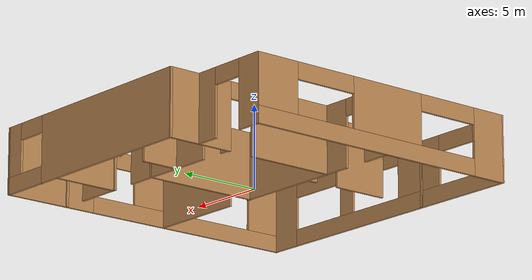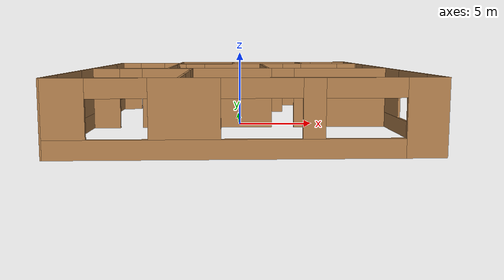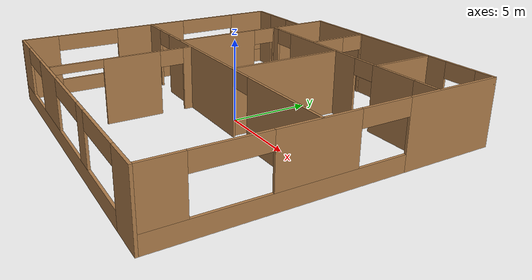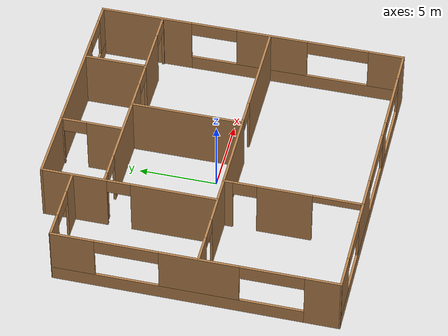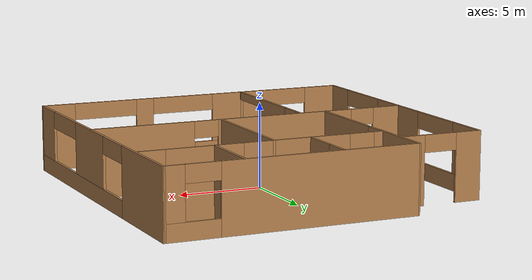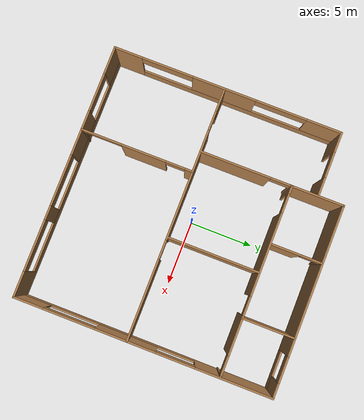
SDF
<?xml version='1.0'?>
<sdf version='1.7'>
  <model name='Building'>
    <pose>0.011 -0.015044 0 0 -0 0</pose>
    <link name='Wall_0'>
      <pose>0.019 -1.20496 0 0 -0 3.14159</pose>
      <visual name='Wall_0_Visual_0'>
        <pose>-6.71951 0 2 0 -0 0</pose>
        <geometry>
          <box>
            <size>6.31098 0.15 4</size>
          </box>
        </geometry>
        <material>
          <script>
            <uri>file://media/materials/scripts/gazebo.material</uri>
            <name>Gazebo/Wood</name>
          </script>
          <ambient>0.87451 1 0.862745 1</ambient>
        </material>
        <meta>
          <layer>0</layer>
        </meta>
      </visual>
      <collision name='Wall_0_Collision_0'>
        <geometry>
          <box>
            <size>6.31098 0.15 4</size>
          </box>
        </geometry>
        <pose>-6.71951 0 2 0 -0 0</pose>
      </collision>
      <visual name='Wall_0_Visual_1'>
        <pose>2.2624 0 2 0 -0 0</pose>
        <geometry>
          <box>
            <size>8.65283 0.15 4</size>
          </box>
        </geometry>
        <material>
          <script>
            <uri>file://media/materials/scripts/gazebo.material</uri>
            <name>Gazebo/Wood</name>
          </script>
          <ambient>0.87451 1 0.862745 1</ambient>
        </material>
        <meta>
          <layer>0</layer>
        </meta>
      </visual>
      <collision name='Wall_0_Collision_1'>
        <geometry>
          <box>
            <size>8.65283 0.15 4</size>
          </box>
        </geometry>
        <pose>2.2624 0 2 0 -0 0</pose>
      </collision>
      <visual name='Wall_0_Visual_2'>
        <pose>8.9819 0 2 0 -0 0</pose>
        <geometry>
          <box>
            <size>1.78619 0.15 4</size>
          </box>
        </geometry>
        <material>
          <script>
            <uri>file://media/materials/scripts/gazebo.material</uri>
            <name>Gazebo/Wood</name>
          </script>
          <ambient>0.87451 1 0.862745 1</ambient>
        </material>
        <meta>
          <layer>0</layer>
        </meta>
      </visual>
      <collision name='Wall_0_Collision_2'>
        <geometry>
          <box>
            <size>1.78619 0.15 4</size>
          </box>
        </geometry>
        <pose>8.9819 0 2 0 -0 0</pose>
      </collision>
      <visual name='Wall_0_Visual_3'>
        <pose>-2.81402 0 3.5 0 -0 0</pose>
        <geometry>
          <box>
            <size>1.5 0.15 1</size>
          </box>
        </geometry>
        <material>
          <script>
            <uri>file://media/materials/scripts/gazebo.material</uri>
            <name>Gazebo/Wood</name>
          </script>
          <ambient>0.87451 1 0.862745 1</ambient>
        </material>
        <meta>
          <layer>0</layer>
        </meta>
      </visual>
      <collision name='Wall_0_Collision_3'>
        <geometry>
          <box>
            <size>1.5 0.15 1</size>
          </box>
        </geometry>
        <pose>-2.81402 0 3.5 0 -0 0</pose>
      </collision>
      <visual name='Wall_0_Visual_4'>
        <pose>7.33881 0 3.5 0 -0 0</pose>
        <geometry>
          <box>
            <size>1.5 0.15 1</size>
          </box>
        </geometry>
        <material>
          <script>
            <uri>file://media/materials/scripts/gazebo.material</uri>
            <name>Gazebo/Wood</name>
          </script>
          <ambient>0.87451 1 0.862745 1</ambient>
        </material>
        <meta>
          <layer>0</layer>
        </meta>
      </visual>
      <collision name='Wall_0_Collision_4'>
        <geometry>
          <box>
            <size>1.5 0.15 1</size>
          </box>
        </geometry>
        <pose>7.33881 0 3.5 0 -0 0</pose>
      </collision>
    </link>
    <link name='Wall_11'>
      <pose>2.471 5.93804 0 0 -0 0</pose>
      <visual name='Wall_11_Visual_0'>
        <pose>-7.05512 0 2 0 -0 0</pose>
        <geometry>
          <box>
            <size>0.639755 0.15 4</size>
          </box>
        </geometry>
        <material>
          <script>
            <uri>file://media/materials/scripts/gazebo.material</uri>
            <name>Gazebo/Wood</name>
          </script>
          <ambient>0.87451 1 0.862745 1</ambient>
        </material>
        <meta>
          <layer>0</layer>
        </meta>
      </visual>
      <collision name='Wall_11_Collision_0'>
        <geometry>
          <box>
            <size>0.639755 0.15 4</size>
          </box>
        </geometry>
        <pose>-7.05512 0 2 0 -0 0</pose>
      </collision>
      <visual name='Wall_11_Visual_1'>
        <pose>-2.01589 0 2 0 -0 0</pose>
        <geometry>
          <box>
            <size>6.43871 0.15 4</size>
          </box>
        </geometry>
        <material>
          <script>
            <uri>file://media/materials/scripts/gazebo.material</uri>
            <name>Gazebo/Wood</name>
          </script>
          <ambient>0.87451 1 0.862745 1</ambient>
        </material>
        <meta>
          <layer>0</layer>
        </meta>
      </visual>
      <collision name='Wall_11_Collision_1'>
        <geometry>
          <box>
            <size>6.43871 0.15 4</size>
          </box>
        </geometry>
        <pose>-2.01589 0 2 0 -0 0</pose>
      </collision>
      <visual name='Wall_11_Visual_2'>
        <pose>4.21448 0 2 0 -0 0</pose>
        <geometry>
          <box>
            <size>3.02203 0.15 4</size>
          </box>
        </geometry>
        <material>
          <script>
            <uri>file://media/materials/scripts/gazebo.material</uri>
            <name>Gazebo/Wood</name>
          </script>
          <ambient>0.87451 1 0.862745 1</ambient>
        </material>
        <meta>
          <layer>0</layer>
        </meta>
      </visual>
      <collision name='Wall_11_Collision_2'>
        <geometry>
          <box>
            <size>3.02203 0.15 4</size>
          </box>
        </geometry>
        <pose>4.21448 0 2 0 -0 0</pose>
      </collision>
      <visual name='Wall_11_Visual_3'>
        <pose>7.30025 0 2 0 -0 0</pose>
        <geometry>
          <box>
            <size>0.149502 0.15 4</size>
          </box>
        </geometry>
        <material>
          <script>
            <uri>file://media/materials/scripts/gazebo.material</uri>
            <name>Gazebo/Wood</name>
          </script>
          <ambient>0.87451 1 0.862745 1</ambient>
        </material>
        <meta>
          <layer>0</layer>
        </meta>
      </visual>
      <collision name='Wall_11_Collision_3'>
        <geometry>
          <box>
            <size>0.149502 0.15 4</size>
          </box>
        </geometry>
        <pose>7.30025 0 2 0 -0 0</pose>
      </collision>
      <visual name='Wall_11_Visual_4'>
        <pose>-5.98524 0 3.5 0 -0 0</pose>
        <geometry>
          <box>
            <size>1.5 0.15 1</size>
          </box>
        </geometry>
        <material>
          <script>
            <uri>file://media/materials/scripts/gazebo.material</uri>
            <name>Gazebo/Wood</name>
          </script>
          <ambient>0.87451 1 0.862745 1</ambient>
        </material>
        <meta>
          <layer>0</layer>
        </meta>
      </visual>
      <collision name='Wall_11_Collision_4'>
        <geometry>
          <box>
            <size>1.5 0.15 1</size>
          </box>
        </geometry>
        <pose>-5.98524 0 3.5 0 -0 0</pose>
      </collision>
      <visual name='Wall_11_Visual_5'>
        <pose>1.95347 0 3.5 0 -0 0</pose>
        <geometry>
          <box>
            <size>1.5 0.15 1</size>
          </box>
        </geometry>
        <material>
          <script>
            <uri>file://media/materials/scripts/gazebo.material</uri>
            <name>Gazebo/Wood</name>
          </script>
          <ambient>0.87451 1 0.862745 1</ambient>
        </material>
        <meta>
          <layer>0</layer>
        </meta>
      </visual>
      <collision name='Wall_11_Collision_5'>
        <geometry>
          <box>
            <size>1.5 0.15 1</size>
          </box>
        </geometry>
        <pose>1.95347 0 3.5 0 -0 0</pose>
      </collision>
      <visual name='Wall_11_Visual_6'>
        <pose>6.4755 0 3.5 0 -0 0</pose>
        <geometry>
          <box>
            <size>1.5 0.15 1</size>
          </box>
        </geometry>
        <material>
          <script>
            <uri>file://media/materials/scripts/gazebo.material</uri>
            <name>Gazebo/Wood</name>
          </script>
          <ambient>0.87451 1 0.862745 1</ambient>
        </material>
        <meta>
          <layer>0</layer>
        </meta>
      </visual>
      <collision name='Wall_11_Collision_6'>
        <geometry>
          <box>
            <size>1.5 0.15 1</size>
          </box>
        </geometry>
        <pose>6.4755 0 3.5 0 -0 0</pose>
      </collision>
    </link>
    <link name='Wall_13'>
      <pose>9.866 0.021044 0 0 -0 -1.5708</pose>
      <visual name='Wall_13_Visual_0'>
        <pose>-6.99174 0 2 0 -0 0</pose>
        <geometry>
          <box>
            <size>6.01653 0.15 4</size>
          </box>
        </geometry>
        <material>
          <script>
            <uri>file://media/materials/scripts/gazebo.material</uri>
            <name>Gazebo/Wood</name>
          </script>
          <ambient>0.752941 0.913725 1 1</ambient>
        </material>
        <meta>
          <layer>0</layer>
        </meta>
      </visual>
      <collision name='Wall_13_Collision_0'>
        <geometry>
          <box>
            <size>6.01653 0.15 4</size>
          </box>
        </geometry>
        <pose>-6.99174 0 2 0 -0 0</pose>
      </collision>
      <visual name='Wall_13_Visual_1'>
        <pose>3.00827 0 0.5 0 -0 0</pose>
        <geometry>
          <box>
            <size>13.9835 0.15 1</size>
          </box>
        </geometry>
        <material>
          <script>
            <uri>file://media/materials/scripts/gazebo.material</uri>
            <name>Gazebo/Wood</name>
          </script>
          <ambient>0.752941 0.913725 1 1</ambient>
        </material>
        <meta>
          <layer>0</layer>
        </meta>
      </visual>
      <collision name='Wall_13_Collision_1'>
        <geometry>
          <box>
            <size>13.9835 0.15 1</size>
          </box>
        </geometry>
        <pose>3.00827 0 0.5 0 -0 0</pose>
      </collision>
      <visual name='Wall_13_Visual_2'>
        <pose>1.35959 0 2.5 0 -0 0</pose>
        <geometry>
          <box>
            <size>4.68613 0.15 3</size>
          </box>
        </geometry>
        <material>
          <script>
            <uri>file://media/materials/scripts/gazebo.material</uri>
            <name>Gazebo/Wood</name>
          </script>
          <ambient>0.752941 0.913725 1 1</ambient>
        </material>
        <meta>
          <layer>0</layer>
        </meta>
      </visual>
      <collision name='Wall_13_Collision_2'>
        <geometry>
          <box>
            <size>4.68613 0.15 3</size>
          </box>
        </geometry>
        <pose>1.35959 0 2.5 0 -0 0</pose>
      </collision>
      <visual name='Wall_13_Visual_3'>
        <pose>8.85133 0 2.5 0 -0 0</pose>
        <geometry>
          <box>
            <size>2.29734 0.15 3</size>
          </box>
        </geometry>
        <material>
          <script>
            <uri>file://media/materials/scripts/gazebo.material</uri>
            <name>Gazebo/Wood</name>
          </script>
          <ambient>0.752941 0.913725 1 1</ambient>
        </material>
        <meta>
          <layer>0</layer>
        </meta>
      </visual>
      <collision name='Wall_13_Collision_3'>
        <geometry>
          <box>
            <size>2.29734 0.15 3</size>
          </box>
        </geometry>
        <pose>8.85133 0 2.5 0 -0 0</pose>
      </collision>
      <visual name='Wall_13_Visual_4'>
        <pose>-2.48347 0 3.5 0 -0 0</pose>
        <geometry>
          <box>
            <size>3 0.15 1</size>
          </box>
        </geometry>
        <material>
          <script>
            <uri>file://media/materials/scripts/gazebo.material</uri>
            <name>Gazebo/Wood</name>
          </script>
          <ambient>0.752941 0.913725 1 1</ambient>
        </material>
        <meta>
          <layer>0</layer>
        </meta>
      </visual>
      <collision name='Wall_13_Collision_4'>
        <geometry>
          <box>
            <size>3 0.15 1</size>
          </box>
        </geometry>
        <pose>-2.48347 0 3.5 0 -0 0</pose>
      </collision>
      <visual name='Wall_13_Visual_5'>
        <pose>5.70266 0 3.5 0 -0 0</pose>
        <geometry>
          <box>
            <size>4 0.15 1</size>
          </box>
        </geometry>
        <material>
          <script>
            <uri>file://media/materials/scripts/gazebo.material</uri>
            <name>Gazebo/Wood</name>
          </script>
          <ambient>0.752941 0.913725 1 1</ambient>
        </material>
        <meta>
          <layer>0</layer>
        </meta>
      </visual>
      <collision name='Wall_13_Collision_5'>
        <geometry>
          <box>
            <size>4 0.15 1</size>
          </box>
        </geometry>
        <pose>5.70266 0 3.5 0 -0 0</pose>
      </collision>
    </link>
    <link name='Wall_18'>
      <pose>2.497 9.94304 0 0 -0 0.000407</pose>
      <visual name='Wall_18_Visual_0'>
        <pose>-1.60908 0 2 0 -0 0</pose>
        <geometry>
          <box>
            <size>11.6699 0.15 4</size>
          </box>
        </geometry>
        <material>
          <script>
            <uri>file://media/materials/scripts/gazebo.material</uri>
            <name>Gazebo/Wood</name>
          </script>
          <ambient>0.752941 0.913725 1 1</ambient>
        </material>
        <meta>
          <layer>0</layer>
        </meta>
      </visual>
      <collision name='Wall_18_Collision_0'>
        <geometry>
          <box>
            <size>11.6699 0.15 4</size>
          </box>
        </geometry>
        <pose>-1.60908 0 2 0 -0 0</pose>
      </collision>
      <visual name='Wall_18_Visual_1'>
        <pose>5.83493 0 0.5 0 -0 0</pose>
        <geometry>
          <box>
            <size>3.21815 0.15 1</size>
          </box>
        </geometry>
        <material>
          <script>
            <uri>file://media/materials/scripts/gazebo.material</uri>
            <name>Gazebo/Wood</name>
          </script>
          <ambient>0.752941 0.913725 1 1</ambient>
        </material>
        <meta>
          <layer>0</layer>
        </meta>
      </visual>
      <collision name='Wall_18_Collision_1'>
        <geometry>
          <box>
            <size>3.21815 0.15 1</size>
          </box>
        </geometry>
        <pose>5.83493 0 0.5 0 -0 0</pose>
      </collision>
      <visual name='Wall_18_Visual_2'>
        <pose>6.83493 0 2.5 0 -0 0</pose>
        <geometry>
          <box>
            <size>1.21815 0.15 3</size>
          </box>
        </geometry>
        <material>
          <script>
            <uri>file://media/materials/scripts/gazebo.material</uri>
            <name>Gazebo/Wood</name>
          </script>
          <ambient>0.752941 0.913725 1 1</ambient>
        </material>
        <meta>
          <layer>0</layer>
        </meta>
      </visual>
      <collision name='Wall_18_Collision_2'>
        <geometry>
          <box>
            <size>1.21815 0.15 3</size>
          </box>
        </geometry>
        <pose>6.83493 0 2.5 0 -0 0</pose>
      </collision>
      <visual name='Wall_18_Visual_3'>
        <pose>5.22585 0 3.5 0 -0 0</pose>
        <geometry>
          <box>
            <size>2 0.15 1</size>
          </box>
        </geometry>
        <material>
          <script>
            <uri>file://media/materials/scripts/gazebo.material</uri>
            <name>Gazebo/Wood</name>
          </script>
          <ambient>0.752941 0.913725 1 1</ambient>
        </material>
        <meta>
          <layer>0</layer>
        </meta>
      </visual>
      <collision name='Wall_18_Collision_3'>
        <geometry>
          <box>
            <size>2 0.15 1</size>
          </box>
        </geometry>
        <pose>5.22585 0 3.5 0 -0 0</pose>
      </collision>
    </link>
    <link name='Wall_20'>
      <collision name='Wall_20_Collision'>
        <geometry>
          <box>
            <size>4 0.15 4</size>
          </box>
        </geometry>
        <pose>0 0 2 0 -0 0</pose>
      </collision>
      <visual name='Wall_20_Visual'>
        <pose>0 0 2 0 -0 0</pose>
        <geometry>
          <box>
            <size>4 0.15 4</size>
          </box>
        </geometry>
        <material>
          <script>
            <uri>file://media/materials/scripts/gazebo.material</uri>
            <name>Gazebo/Wood</name>
          </script>
          <ambient>0.87451 1 0.862745 1</ambient>
        </material>
        <meta>
          <layer>0</layer>
        </meta>
      </visual>
      <pose>5.349 7.91104 0 0 -0 -1.5708</pose>
    </link>
    <link name='Wall_25'>
      <pose>-0.374 7.94004 0 0 -0 -1.5708</pose>
      <visual name='Wall_25_Visual_0'>
        <pose>-1.92254 0 2 0 -0 0</pose>
        <geometry>
          <box>
            <size>0.154925 0.15 4</size>
          </box>
        </geometry>
        <material>
          <script>
            <uri>file://media/materials/scripts/gazebo.material</uri>
            <name>Gazebo/Wood</name>
          </script>
          <ambient>1 1 1 1</ambient>
        </material>
        <meta>
          <layer>0</layer>
        </meta>
      </visual>
      <collision name='Wall_25_Collision_0'>
        <geometry>
          <box>
            <size>0.154925 0.15 4</size>
          </box>
        </geometry>
        <pose>-1.92254 0 2 0 -0 0</pose>
      </collision>
      <visual name='Wall_25_Visual_1'>
        <pose>0.827463 0 2 0 -0 0</pose>
        <geometry>
          <box>
            <size>2.34508 0.15 4</size>
          </box>
        </geometry>
        <material>
          <script>
            <uri>file://media/materials/scripts/gazebo.material</uri>
            <name>Gazebo/Wood</name>
          </script>
          <ambient>1 1 1 1</ambient>
        </material>
        <meta>
          <layer>0</layer>
        </meta>
      </visual>
      <collision name='Wall_25_Collision_1'>
        <geometry>
          <box>
            <size>2.34508 0.15 4</size>
          </box>
        </geometry>
        <pose>0.827463 0 2 0 -0 0</pose>
      </collision>
      <visual name='Wall_25_Visual_2'>
        <pose>-1.09508 0 3.5 0 -0 0</pose>
        <geometry>
          <box>
            <size>1.5 0.15 1</size>
          </box>
        </geometry>
        <material>
          <script>
            <uri>file://media/materials/scripts/gazebo.material</uri>
            <name>Gazebo/Wood</name>
          </script>
          <ambient>1 1 1 1</ambient>
        </material>
        <meta>
          <layer>0</layer>
        </meta>
      </visual>
      <collision name='Wall_25_Collision_2'>
        <geometry>
          <box>
            <size>1.5 0.15 1</size>
          </box>
        </geometry>
        <pose>-1.09508 0 3.5 0 -0 0</pose>
      </collision>
    </link>
    <link name='Wall_3'>
      <pose>-3.255 -5.57296 0 0 -0 1.5708</pose>
      <visual name='Wall_3_Visual_0'>
        <pose>-4.29696 0 2 0 -0 0</pose>
        <geometry>
          <box>
            <size>0.156073 0.15 4</size>
          </box>
        </geometry>
        <material>
          <script>
            <uri>file://media/materials/scripts/gazebo.material</uri>
            <name>Gazebo/Wood</name>
          </script>
          <ambient>0.87451 1 0.862745 1</ambient>
        </material>
        <meta>
          <layer>0</layer>
        </meta>
      </visual>
      <collision name='Wall_3_Collision_0'>
        <geometry>
          <box>
            <size>0.156073 0.15 4</size>
          </box>
        </geometry>
        <pose>-4.29696 0 2 0 -0 0</pose>
      </collision>
      <visual name='Wall_3_Visual_1'>
        <pose>0.523416 0 2 0 -0 0</pose>
        <geometry>
          <box>
            <size>3.48468 0.15 4</size>
          </box>
        </geometry>
        <material>
          <script>
            <uri>file://media/materials/scripts/gazebo.material</uri>
            <name>Gazebo/Wood</name>
          </script>
          <ambient>0.87451 1 0.862745 1</ambient>
        </material>
        <meta>
          <layer>0</layer>
        </meta>
      </visual>
      <collision name='Wall_3_Collision_1'>
        <geometry>
          <box>
            <size>3.48468 0.15 4</size>
          </box>
        </geometry>
        <pose>0.523416 0 2 0 -0 0</pose>
      </collision>
      <visual name='Wall_3_Visual_2'>
        <pose>4.07038 0 2 0 -0 0</pose>
        <geometry>
          <box>
            <size>0.609241 0.15 4</size>
          </box>
        </geometry>
        <material>
          <script>
            <uri>file://media/materials/scripts/gazebo.material</uri>
            <name>Gazebo/Wood</name>
          </script>
          <ambient>0.87451 1 0.862745 1</ambient>
        </material>
        <meta>
          <layer>0</layer>
        </meta>
      </visual>
      <collision name='Wall_3_Collision_2'>
        <geometry>
          <box>
            <size>0.609241 0.15 4</size>
          </box>
        </geometry>
        <pose>4.07038 0 2 0 -0 0</pose>
      </collision>
      <visual name='Wall_3_Visual_3'>
        <pose>3.01576 0 3.5 0 -0 0</pose>
        <geometry>
          <box>
            <size>1.5 0.15 1</size>
          </box>
        </geometry>
        <material>
          <script>
            <uri>file://media/materials/scripts/gazebo.material</uri>
            <name>Gazebo/Wood</name>
          </script>
          <ambient>0.87451 1 0.862745 1</ambient>
        </material>
        <meta>
          <layer>0</layer>
        </meta>
      </visual>
      <collision name='Wall_3_Collision_3'>
        <geometry>
          <box>
            <size>1.5 0.15 1</size>
          </box>
        </geometry>
        <pose>3.01576 0 3.5 0 -0 0</pose>
      </collision>
      <visual name='Wall_3_Visual_4'>
        <pose>-2.71893 0 3.75 0 -0 0</pose>
        <geometry>
          <box>
            <size>3 0.15 0.5</size>
          </box>
        </geometry>
        <material>
          <script>
            <uri>file://media/materials/scripts/gazebo.material</uri>
            <name>Gazebo/Wood</name>
          </script>
          <ambient>0.87451 1 0.862745 1</ambient>
        </material>
        <meta>
          <layer>0</layer>
        </meta>
      </visual>
      <collision name='Wall_3_Collision_4'>
        <geometry>
          <box>
            <size>3 0.15 0.5</size>
          </box>
        </geometry>
        <pose>-2.71893 0 3.75 0 -0 0</pose>
      </collision>
    </link>
    <link name='Wall_30'>
      <pose>0 -9.93046 0 0 -0 3.14002</pose>
      <visual name='Wall_30_Visual_0'>
        <pose>-8.91337 0 2 0 -0 0</pose>
        <geometry>
          <box>
            <size>2.06529 0.15 4</size>
          </box>
        </geometry>
        <material>
          <script>
            <uri>file://media/materials/scripts/gazebo.material</uri>
            <name>Gazebo/Wood</name>
          </script>
          <ambient>0.752941 0.913725 1 1</ambient>
        </material>
        <meta>
          <layer>0</layer>
        </meta>
      </visual>
      <collision name='Wall_30_Collision_0'>
        <geometry>
          <box>
            <size>2.06529 0.15 4</size>
          </box>
        </geometry>
        <pose>-8.91337 0 2 0 -0 0</pose>
      </collision>
      <visual name='Wall_30_Visual_1'>
        <pose>1.03265 0 0.5 0 -0 0</pose>
        <geometry>
          <box>
            <size>17.8267 0.15 1</size>
          </box>
        </geometry>
        <material>
          <script>
            <uri>file://media/materials/scripts/gazebo.material</uri>
            <name>Gazebo/Wood</name>
          </script>
          <ambient>0.752941 0.913725 1 1</ambient>
        </material>
        <meta>
          <layer>0</layer>
        </meta>
      </visual>
      <collision name='Wall_30_Collision_1'>
        <geometry>
          <box>
            <size>17.8267 0.15 1</size>
          </box>
        </geometry>
        <pose>1.03265 0 0.5 0 -0 0</pose>
      </collision>
      <visual name='Wall_30_Visual_2'>
        <pose>-3.32337 0 2.5 0 -0 0</pose>
        <geometry>
          <box>
            <size>1.11469 0.15 3</size>
          </box>
        </geometry>
        <material>
          <script>
            <uri>file://media/materials/scripts/gazebo.material</uri>
            <name>Gazebo/Wood</name>
          </script>
          <ambient>0.752941 0.913725 1 1</ambient>
        </material>
        <meta>
          <layer>0</layer>
        </meta>
      </visual>
      <collision name='Wall_30_Collision_2'>
        <geometry>
          <box>
            <size>1.11469 0.15 3</size>
          </box>
        </geometry>
        <pose>-3.32337 0 2.5 0 -0 0</pose>
      </collision>
      <visual name='Wall_30_Visual_3'>
        <pose>2.99298 0 2.5 0 -0 0</pose>
        <geometry>
          <box>
            <size>3.51802 0.15 3</size>
          </box>
        </geometry>
        <material>
          <script>
            <uri>file://media/materials/scripts/gazebo.material</uri>
            <name>Gazebo/Wood</name>
          </script>
          <ambient>0.752941 0.913725 1 1</ambient>
        </material>
        <meta>
          <layer>0</layer>
        </meta>
      </visual>
      <collision name='Wall_30_Collision_3'>
        <geometry>
          <box>
            <size>3.51802 0.15 3</size>
          </box>
        </geometry>
        <pose>2.99298 0 2.5 0 -0 0</pose>
      </collision>
      <visual name='Wall_30_Visual_4'>
        <pose>8.849 0 2.5 0 -0 0</pose>
        <geometry>
          <box>
            <size>2.19402 0.15 3</size>
          </box>
        </geometry>
        <material>
          <script>
            <uri>file://media/materials/scripts/gazebo.material</uri>
            <name>Gazebo/Wood</name>
          </script>
          <ambient>0.752941 0.913725 1 1</ambient>
        </material>
        <meta>
          <layer>0</layer>
        </meta>
      </visual>
      <collision name='Wall_30_Collision_4'>
        <geometry>
          <box>
            <size>2.19402 0.15 3</size>
          </box>
        </geometry>
        <pose>8.849 0 2.5 0 -0 0</pose>
      </collision>
      <visual name='Wall_30_Visual_5'>
        <pose>-5.88072 0 3.5 0 -0 0</pose>
        <geometry>
          <box>
            <size>4 0.15 1</size>
          </box>
        </geometry>
        <material>
          <script>
            <uri>file://media/materials/scripts/gazebo.material</uri>
            <name>Gazebo/Wood</name>
          </script>
          <ambient>0.752941 0.913725 1 1</ambient>
        </material>
        <meta>
          <layer>0</layer>
        </meta>
      </visual>
      <collision name='Wall_30_Collision_5'>
        <geometry>
          <box>
            <size>4 0.15 1</size>
          </box>
        </geometry>
        <pose>-5.88072 0 3.5 0 -0 0</pose>
      </collision>
      <visual name='Wall_30_Visual_6'>
        <pose>-0.766029 0 3.5 0 -0 0</pose>
        <geometry>
          <box>
            <size>4 0.15 1</size>
          </box>
        </geometry>
        <material>
          <script>
            <uri>file://media/materials/scripts/gazebo.material</uri>
            <name>Gazebo/Wood</name>
          </script>
          <ambient>0.752941 0.913725 1 1</ambient>
        </material>
        <meta>
          <layer>0</layer>
        </meta>
      </visual>
      <collision name='Wall_30_Collision_6'>
        <geometry>
          <box>
            <size>4 0.15 1</size>
          </box>
        </geometry>
        <pose>-0.766029 0 3.5 0 -0 0</pose>
      </collision>
      <visual name='Wall_30_Visual_7'>
        <pose>6.25199 0 3.5 0 -0 0</pose>
        <geometry>
          <box>
            <size>3 0.15 1</size>
          </box>
        </geometry>
        <material>
          <script>
            <uri>file://media/materials/scripts/gazebo.material</uri>
            <name>Gazebo/Wood</name>
          </script>
          <ambient>0.752941 0.913725 1 1</ambient>
        </material>
        <meta>
          <layer>0</layer>
        </meta>
      </visual>
      <collision name='Wall_30_Collision_7'>
        <geometry>
          <box>
            <size>3 0.15 1</size>
          </box>
        </geometry>
        <pose>6.25199 0 3.5 0 -0 0</pose>
      </collision>
    </link>
    <link name='Wall_33'>
      <pose>-9.871 -0.989956 0 0 -0 1.5708</pose>
      <visual name='Wall_33_Visual_0'>
        <pose>-7.8656 0 2 0 -0 0</pose>
        <geometry>
          <box>
            <size>2.26879 0.15 4</size>
          </box>
        </geometry>
        <material>
          <script>
            <uri>file://media/materials/scripts/gazebo.material</uri>
            <name>Gazebo/Wood</name>
          </script>
          <ambient>0.752941 0.913725 1 1</ambient>
        </material>
        <meta>
          <layer>0</layer>
        </meta>
      </visual>
      <collision name='Wall_33_Collision_0'>
        <geometry>
          <box>
            <size>2.26879 0.15 4</size>
          </box>
        </geometry>
        <pose>-7.8656 0 2 0 -0 0</pose>
      </collision>
      <visual name='Wall_33_Visual_1'>
        <pose>1.1344 0 0.5 0 -0 0</pose>
        <geometry>
          <box>
            <size>15.7312 0.15 1</size>
          </box>
        </geometry>
        <material>
          <script>
            <uri>file://media/materials/scripts/gazebo.material</uri>
            <name>Gazebo/Wood</name>
          </script>
          <ambient>0.752941 0.913725 1 1</ambient>
        </material>
        <meta>
          <layer>0</layer>
        </meta>
      </visual>
      <collision name='Wall_33_Collision_1'>
        <geometry>
          <box>
            <size>15.7312 0.15 1</size>
          </box>
        </geometry>
        <pose>1.1344 0 0.5 0 -0 0</pose>
      </collision>
      <visual name='Wall_33_Visual_2'>
        <pose>-0.242331 0 2.5 0 -0 0</pose>
        <geometry>
          <box>
            <size>4.97775 0.15 3</size>
          </box>
        </geometry>
        <material>
          <script>
            <uri>file://media/materials/scripts/gazebo.material</uri>
            <name>Gazebo/Wood</name>
          </script>
          <ambient>0.752941 0.913725 1 1</ambient>
        </material>
        <meta>
          <layer>0</layer>
        </meta>
      </visual>
      <collision name='Wall_33_Collision_2'>
        <geometry>
          <box>
            <size>4.97775 0.15 3</size>
          </box>
        </geometry>
        <pose>-0.242331 0 2.5 0 -0 0</pose>
      </collision>
      <visual name='Wall_33_Visual_3'>
        <pose>7.62327 0 2.5 0 -0 0</pose>
        <geometry>
          <box>
            <size>2.75346 0.15 3</size>
          </box>
        </geometry>
        <material>
          <script>
            <uri>file://media/materials/scripts/gazebo.material</uri>
            <name>Gazebo/Wood</name>
          </script>
          <ambient>0.752941 0.913725 1 1</ambient>
        </material>
        <meta>
          <layer>0</layer>
        </meta>
      </visual>
      <collision name='Wall_33_Collision_3'>
        <geometry>
          <box>
            <size>2.75346 0.15 3</size>
          </box>
        </geometry>
        <pose>7.62327 0 2.5 0 -0 0</pose>
      </collision>
      <visual name='Wall_33_Visual_4'>
        <pose>-4.73121 0 3.5 0 -0 0</pose>
        <geometry>
          <box>
            <size>4 0.15 1</size>
          </box>
        </geometry>
        <material>
          <script>
            <uri>file://media/materials/scripts/gazebo.material</uri>
            <name>Gazebo/Wood</name>
          </script>
          <ambient>0.752941 0.913725 1 1</ambient>
        </material>
        <meta>
          <layer>0</layer>
        </meta>
      </visual>
      <collision name='Wall_33_Collision_4'>
        <geometry>
          <box>
            <size>4 0.15 1</size>
          </box>
        </geometry>
        <pose>-4.73121 0 3.5 0 -0 0</pose>
      </collision>
      <visual name='Wall_33_Visual_5'>
        <pose>4.24654 0 3.5 0 -0 0</pose>
        <geometry>
          <box>
            <size>4 0.15 1</size>
          </box>
        </geometry>
        <material>
          <script>
            <uri>file://media/materials/scripts/gazebo.material</uri>
            <name>Gazebo/Wood</name>
          </script>
          <ambient>0.752941 0.913725 1 1</ambient>
        </material>
        <meta>
          <layer>0</layer>
        </meta>
      </visual>
      <collision name='Wall_33_Collision_5'>
        <geometry>
          <box>
            <size>4 0.15 1</size>
          </box>
        </geometry>
        <pose>4.24654 0 3.5 0 -0 0</pose>
      </collision>
    </link>
    <link name='Wall_38'>
      <collision name='Wall_38_Collision'>
        <geometry>
          <box>
            <size>7.25 0.15 4</size>
          </box>
        </geometry>
        <pose>0 0 2 0 -0 0</pose>
      </collision>
      <visual name='Wall_38_Visual'>
        <pose>0 0 2 0 -0 0</pose>
        <geometry>
          <box>
            <size>7.25 0.15 4</size>
          </box>
        </geometry>
        <material>
          <script>
            <uri>file://media/materials/scripts/gazebo.material</uri>
            <name>Gazebo/Wood</name>
          </script>
          <ambient>1 1 1 1</ambient>
        </material>
        <meta>
          <layer>0</layer>
        </meta>
      </visual>
      <pose>1.868 2.39104 0 0 -0 -1.5708</pose>
    </link>
    <link name='Wall_41'>
      <pose>-7.434 7.97304 0 0 -0 0</pose>
      <visual name='Wall_41_Visual_0'>
        <pose>-1.70196 0 2 0 -0 0</pose>
        <geometry>
          <box>
            <size>1.59608 0.15 4</size>
          </box>
        </geometry>
        <material>
          <script>
            <uri>file://media/materials/scripts/gazebo.material</uri>
            <name>Gazebo/Wood</name>
          </script>
          <ambient>0.752941 0.913725 1 1</ambient>
        </material>
        <meta>
          <layer>0</layer>
        </meta>
      </visual>
      <collision name='Wall_41_Collision_0'>
        <geometry>
          <box>
            <size>1.59608 0.15 4</size>
          </box>
        </geometry>
        <pose>-1.70196 0 2 0 -0 0</pose>
      </collision>
      <visual name='Wall_41_Visual_1'>
        <pose>1.79804 0 2 0 -0 0</pose>
        <geometry>
          <box>
            <size>1.40392 0.15 4</size>
          </box>
        </geometry>
        <material>
          <script>
            <uri>file://media/materials/scripts/gazebo.material</uri>
            <name>Gazebo/Wood</name>
          </script>
          <ambient>0.752941 0.913725 1 1</ambient>
        </material>
        <meta>
          <layer>0</layer>
        </meta>
      </visual>
      <collision name='Wall_41_Collision_1'>
        <geometry>
          <box>
            <size>1.40392 0.15 4</size>
          </box>
        </geometry>
        <pose>1.79804 0 2 0 -0 0</pose>
      </collision>
      <visual name='Wall_41_Visual_2'>
        <pose>0.096082 0 3.5 0 -0 0</pose>
        <geometry>
          <box>
            <size>2 0.15 1</size>
          </box>
        </geometry>
        <material>
          <script>
            <uri>file://media/materials/scripts/gazebo.material</uri>
            <name>Gazebo/Wood</name>
          </script>
          <ambient>0.752941 0.913725 1 1</ambient>
        </material>
        <meta>
          <layer>0</layer>
        </meta>
      </visual>
      <collision name='Wall_41_Collision_2'>
        <geometry>
          <box>
            <size>2 0.15 1</size>
          </box>
        </geometry>
        <pose>0.096082 0 3.5 0 -0 0</pose>
      </collision>
    </link>
    <link name='Wall_5'>
      <pose>-4.872 4.39004 0 0 -0 -1.5708</pose>
      <visual name='Wall_5_Visual_0'>
        <pose>-3.51064 0 2 0 -0 0</pose>
        <geometry>
          <box>
            <size>4.22873 0.15 4</size>
          </box>
        </geometry>
        <material>
          <script>
            <uri>file://media/materials/scripts/gazebo.material</uri>
            <name>Gazebo/Wood</name>
          </script>
          <ambient>0.87451 1 0.862745 1</ambient>
        </material>
        <meta>
          <layer>0</layer>
        </meta>
      </visual>
      <collision name='Wall_5_Collision_0'>
        <geometry>
          <box>
            <size>4.22873 0.15 4</size>
          </box>
        </geometry>
        <pose>-3.51064 0 2 0 -0 0</pose>
      </collision>
      <visual name='Wall_5_Visual_1'>
        <pose>2.86436 0 2 0 -0 0</pose>
        <geometry>
          <box>
            <size>5.52127 0.15 4</size>
          </box>
        </geometry>
        <material>
          <script>
            <uri>file://media/materials/scripts/gazebo.material</uri>
            <name>Gazebo/Wood</name>
          </script>
          <ambient>0.87451 1 0.862745 1</ambient>
        </material>
        <meta>
          <layer>0</layer>
        </meta>
      </visual>
      <collision name='Wall_5_Collision_1'>
        <geometry>
          <box>
            <size>5.52127 0.15 4</size>
          </box>
        </geometry>
        <pose>2.86436 0 2 0 -0 0</pose>
      </collision>
      <visual name='Wall_5_Visual_2'>
        <pose>-0.646273 0 3.5 0 -0 0</pose>
        <geometry>
          <box>
            <size>1.5 0.15 1</size>
          </box>
        </geometry>
        <material>
          <script>
            <uri>file://media/materials/scripts/gazebo.material</uri>
            <name>Gazebo/Wood</name>
          </script>
          <ambient>0.87451 1 0.862745 1</ambient>
        </material>
        <meta>
          <layer>0</layer>
        </meta>
      </visual>
      <collision name='Wall_5_Collision_2'>
        <geometry>
          <box>
            <size>1.5 0.15 1</size>
          </box>
        </geometry>
        <pose>-0.646273 0 3.5 0 -0 0</pose>
      </collision>
    </link>
    <static>1</static>
  </model>
</sdf>
